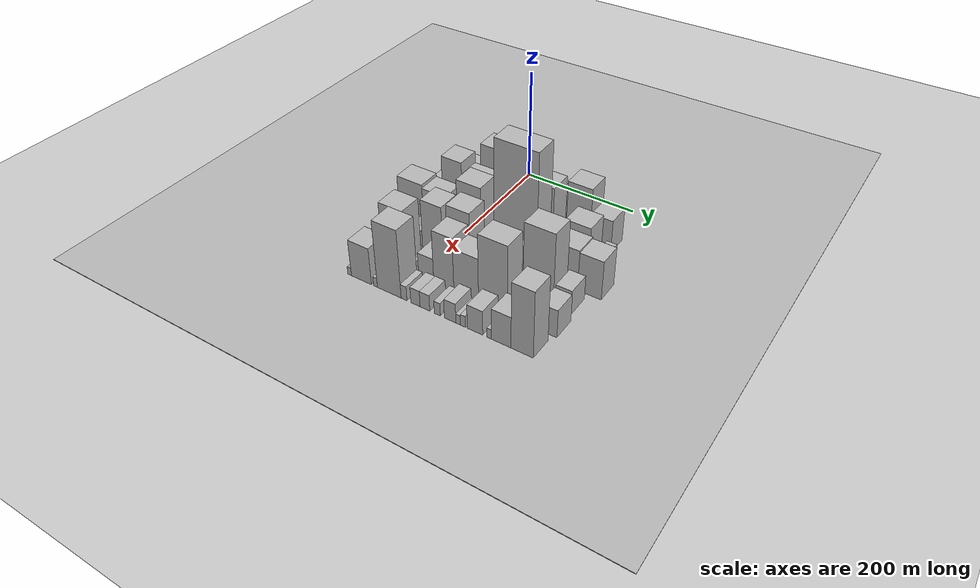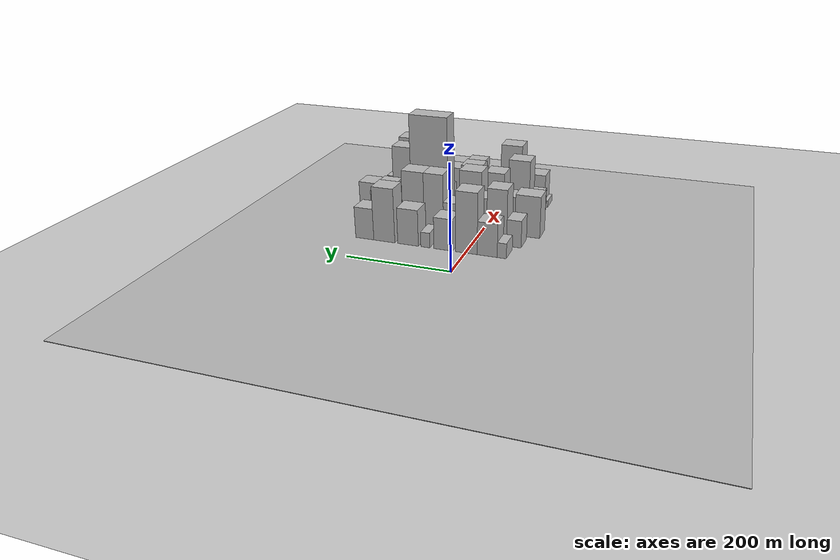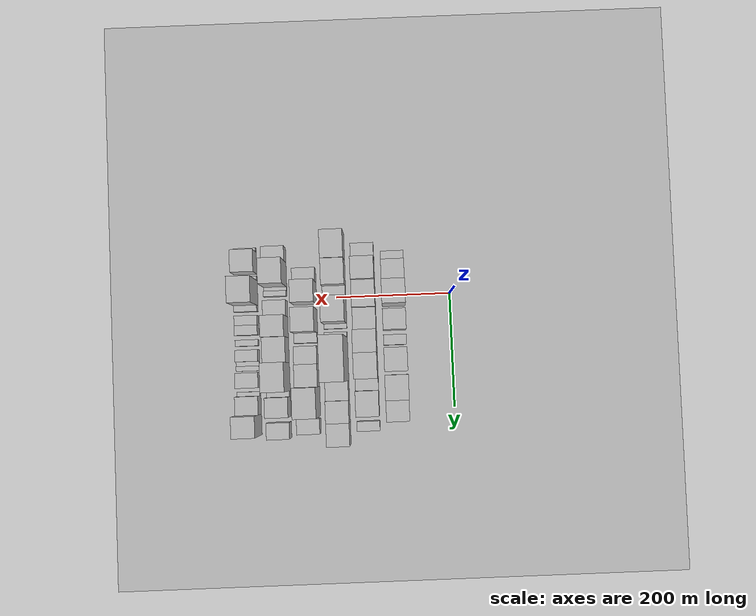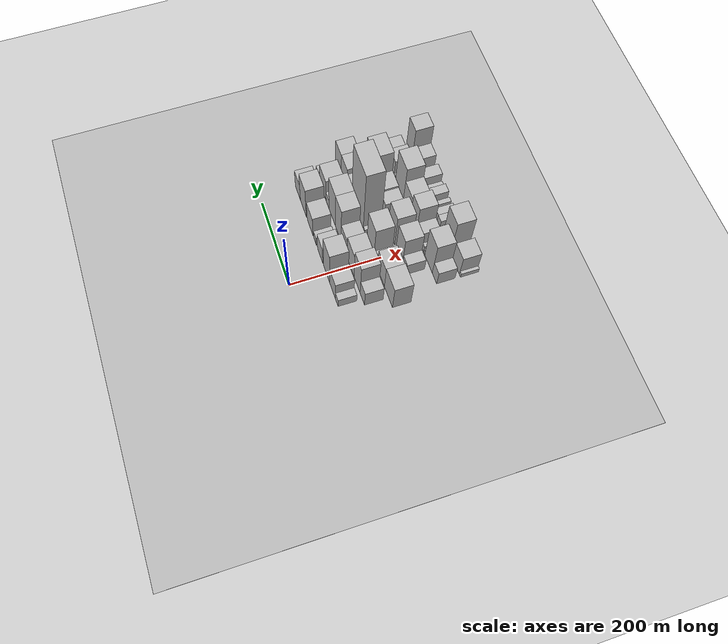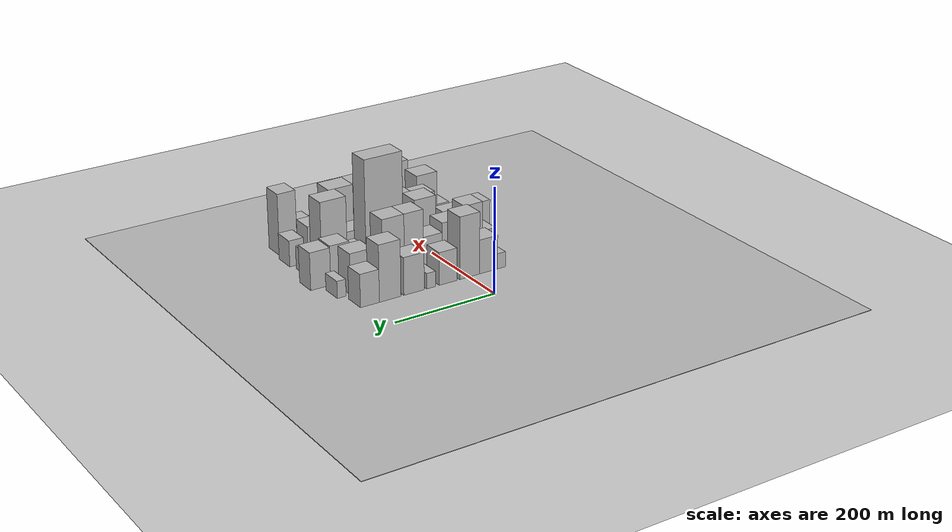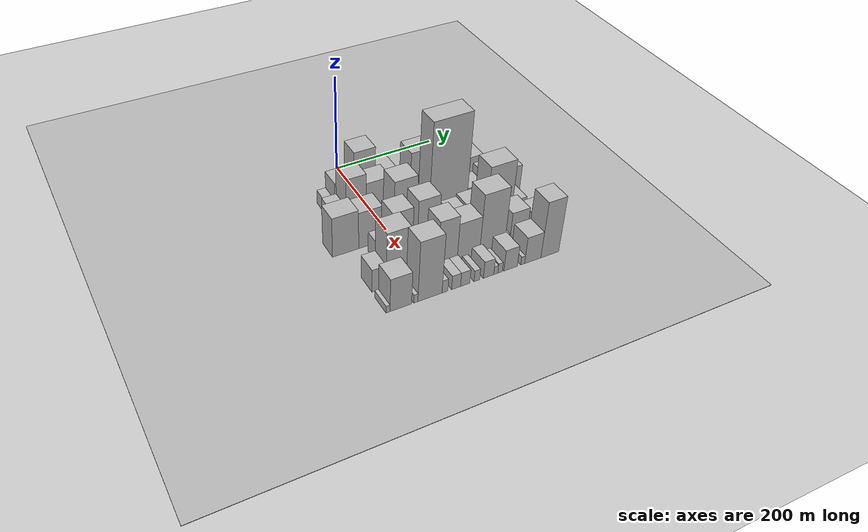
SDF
<sdf version="1.6">
 <world name="default">
  <include><name>ground_plane_1</name><uri>model://HANNAS_ground_plane</uri></include>
  <include>
   <name>ground_plane_2</name>
   <uri>model://HANNAS_ground_plane</uri>
   <pose>100 0 0  0 0 0</pose>
  </include>
  <model name="building_24">
   <static>1</static>
   <pose>100.0000 -68.7979 0 0.000000 0.000000 0.000000</pose>
   <link name="link">
    <pose>0 0 15.00 0 0 0</pose>
    <collision name="collision"><geometry><box><size>40.0000 17.1581 30.0000</size></box></geometry></collision>
    <visual name="visual">
     <cast_shadows>0</cast_shadows>
     <geometry><box><size>40.0000 17.1581 30.0000</size></box></geometry>
     <material>
      <script>
       <uri>model://HANNAS_wall/materials/scripts</uri>
       <uri>model://HANNAS_wall/materials/textures</uri>
       <name>vrc/HANNAS_wall</name>
      </script>
     </material>
    </visual>
   </link>
  </model>
  <model name="building_25">
   <static>1</static>
   <pose>100.0000 -41.3671 0 0.000000 0.000000 0.000000</pose>
   <link name="link">
    <pose>0 0 33.00 0 0 0</pose>
    <collision name="collision"><geometry><box><size>40.0000 37.7035 66.0000</size></box></geometry></collision>
    <visual name="visual">
     <cast_shadows>0</cast_shadows>
     <geometry><box><size>40.0000 37.7035 66.0000</size></box></geometry>
     <material>
      <script>
       <uri>model://HANNAS_wall/materials/scripts</uri>
       <uri>model://HANNAS_wall/materials/textures</uri>
       <name>vrc/HANNAS_wall</name>
      </script>
     </material>
    </visual>
   </link>
  </model>
  <model name="building_26">
   <static>1</static>
   <pose>100.0000 -1.7018 0 0.000000 0.000000 0.000000</pose>
   <link name="link">
    <pose>0 0 60.00 0 0 0</pose>
    <collision name="collision"><geometry><box><size>40.0000 41.6272 120.0000</size></box></geometry></collision>
    <visual name="visual">
     <cast_shadows>0</cast_shadows>
     <geometry><box><size>40.0000 41.6272 120.0000</size></box></geometry>
     <material>
      <script>
       <uri>model://HANNAS_wall/materials/scripts</uri>
       <uri>model://HANNAS_wall/materials/textures</uri>
       <name>vrc/HANNAS_wall</name>
      </script>
     </material>
    </visual>
   </link>
  </model>
  <model name="building_27">
   <static>1</static>
   <pose>100.0000 43.3163 0 0.000000 0.000000 0.000000</pose>
   <link name="link">
    <pose>0 0 31.50 0 0 0</pose>
    <collision name="collision"><geometry><box><size>40.0000 36.4091 63.0000</size></box></geometry></collision>
    <visual name="visual">
     <cast_shadows>0</cast_shadows>
     <geometry><box><size>40.0000 36.4091 63.0000</size></box></geometry>
     <material>
      <script>
       <uri>model://HANNAS_wall/materials/scripts</uri>
       <uri>model://HANNAS_wall/materials/textures</uri>
       <name>vrc/HANNAS_wall</name>
      </script>
     </material>
    </visual>
   </link>
  </model>
  <model name="building_28">
   <static>1</static>
   <pose>100.0000 78.5079 0 0.000000 0.000000 0.000000</pose>
   <link name="link">
    <pose>0 0 15.00 0 0 0</pose>
    <collision name="collision"><geometry><box><size>40.0000 17.9742 30.0000</size></box></geometry></collision>
    <visual name="visual">
     <cast_shadows>0</cast_shadows>
     <geometry><box><size>40.0000 17.9742 30.0000</size></box></geometry>
     <material>
      <script>
       <uri>model://HANNAS_wall/materials/scripts</uri>
       <uri>model://HANNAS_wall/materials/textures</uri>
       <name>vrc/HANNAS_wall</name>
      </script>
     </material>
    </visual>
   </link>
  </model>
  <model name="building_29">
   <static>1</static>
   <pose>100.0000 113.1503 0 0.000000 0.000000 0.000000</pose>
   <link name="link">
    <pose>0 0 36.00 0 0 0</pose>
    <collision name="collision"><geometry><box><size>40.0000 41.3105 72.0000</size></box></geometry></collision>
    <visual name="visual">
     <cast_shadows>0</cast_shadows>
     <geometry><box><size>40.0000 41.3105 72.0000</size></box></geometry>
     <material>
      <script>
       <uri>model://HANNAS_wall/materials/scripts</uri>
       <uri>model://HANNAS_wall/materials/textures</uri>
       <name>vrc/HANNAS_wall</name>
      </script>
     </material>
    </visual>
   </link>
  </model>
  <model name="building_30">
   <static>1</static>
   <pose>100.0000 161.3058 0 0.000000 0.000000 0.000000</pose>
   <link name="link">
    <pose>0 0 54.00 0 0 0</pose>
    <collision name="collision"><geometry><box><size>40.0000 43.0006 108.0000</size></box></geometry></collision>
    <visual name="visual">
     <cast_shadows>0</cast_shadows>
     <geometry><box><size>40.0000 43.0006 108.0000</size></box></geometry>
     <material>
      <script>
       <uri>model://HANNAS_wall/materials/scripts</uri>
       <uri>model://HANNAS_wall/materials/textures</uri>
       <name>vrc/HANNAS_wall</name>
      </script>
     </material>
    </visual>
   </link>
  </model>
  <model name="building_31">
   <static>1</static>
   <pose>100.0000 201.5353 0 0.000000 0.000000 0.000000</pose>
   <link name="link">
    <pose>0 0 31.50 0 0 0</pose>
    <collision name="collision"><geometry><box><size>40.0000 37.4584 63.0000</size></box></geometry></collision>
    <visual name="visual">
     <cast_shadows>0</cast_shadows>
     <geometry><box><size>40.0000 37.4584 63.0000</size></box></geometry>
     <material>
      <script>
       <uri>model://HANNAS_wall/materials/scripts</uri>
       <uri>model://HANNAS_wall/materials/textures</uri>
       <name>vrc/HANNAS_wall</name>
      </script>
     </material>
    </visual>
   </link>
  </model>
  <model name="building_72">
   <static>1</static>
   <pose>152.0000 -77.0069 0 0.000000 0.000000 0.000000</pose>
   <link name="link">
    <pose>0 0 27.00 0 0 0</pose>
    <collision name="collision"><geometry><box><size>40.0000 27.7486 54.0000</size></box></geometry></collision>
    <visual name="visual">
     <cast_shadows>0</cast_shadows>
     <geometry><box><size>40.0000 27.7486 54.0000</size></box></geometry>
     <material>
      <script>
       <uri>model://HANNAS_wall/materials/scripts</uri>
       <uri>model://HANNAS_wall/materials/textures</uri>
       <name>vrc/HANNAS_wall</name>
      </script>
     </material>
    </visual>
   </link>
  </model>
  <model name="building_73">
   <static>1</static>
   <pose>152.0000 -43.8006 0 0.000000 0.000000 0.000000</pose>
   <link name="link">
    <pose>0 0 55.50 0 0 0</pose>
    <collision name="collision"><geometry><box><size>40.0000 38.6639 111.0000</size></box></geometry></collision>
    <visual name="visual">
     <cast_shadows>0</cast_shadows>
     <geometry><box><size>40.0000 38.6639 111.0000</size></box></geometry>
     <material>
      <script>
       <uri>model://HANNAS_wall/materials/scripts</uri>
       <uri>model://HANNAS_wall/materials/textures</uri>
       <name>vrc/HANNAS_wall</name>
      </script>
     </material>
    </visual>
   </link>
  </model>
  <model name="building_74">
   <static>1</static>
   <pose>152.0000 -1.1710 0 0.000000 0.000000 0.000000</pose>
   <link name="link">
    <pose>0 0 45.00 0 0 0</pose>
    <collision name="collision"><geometry><box><size>40.0000 46.5953 90.0000</size></box></geometry></collision>
    <visual name="visual">
     <cast_shadows>0</cast_shadows>
     <geometry><box><size>40.0000 46.5953 90.0000</size></box></geometry>
     <material>
      <script>
       <uri>model://HANNAS_wall/materials/scripts</uri>
       <uri>model://HANNAS_wall/materials/textures</uri>
       <name>vrc/HANNAS_wall</name>
      </script>
     </material>
    </visual>
   </link>
  </model>
  <model name="building_75">
   <static>1</static>
   <pose>152.0000 41.7712 0 0.000000 0.000000 0.000000</pose>
   <link name="link">
    <pose>0 0 36.00 0 0 0</pose>
    <collision name="collision"><geometry><box><size>40.0000 39.2890 72.0000</size></box></geometry></collision>
    <visual name="visual">
     <cast_shadows>0</cast_shadows>
     <geometry><box><size>40.0000 39.2890 72.0000</size></box></geometry>
     <material>
      <script>
       <uri>model://HANNAS_wall/materials/scripts</uri>
       <uri>model://HANNAS_wall/materials/textures</uri>
       <name>vrc/HANNAS_wall</name>
      </script>
     </material>
    </visual>
   </link>
  </model>
  <model name="building_76">
   <static>1</static>
   <pose>152.0000 80.8757 0 0.000000 0.000000 0.000000</pose>
   <link name="link">
    <pose>0 0 63.00 0 0 0</pose>
    <collision name="collision"><geometry><box><size>40.0000 38.9200 126.0000</size></box></geometry></collision>
    <visual name="visual">
     <cast_shadows>0</cast_shadows>
     <geometry><box><size>40.0000 38.9200 126.0000</size></box></geometry>
     <material>
      <script>
       <uri>model://HANNAS_wall/materials/scripts</uri>
       <uri>model://HANNAS_wall/materials/textures</uri>
       <name>vrc/HANNAS_wall</name>
      </script>
     </material>
    </visual>
   </link>
  </model>
  <model name="building_77">
   <static>1</static>
   <pose>152.0000 122.4114 0 0.000000 0.000000 0.000000</pose>
   <link name="link">
    <pose>0 0 63.00 0 0 0</pose>
    <collision name="collision"><geometry><box><size>40.0000 44.1514 126.0000</size></box></geometry></collision>
    <visual name="visual">
     <cast_shadows>0</cast_shadows>
     <geometry><box><size>40.0000 44.1514 126.0000</size></box></geometry>
     <material>
      <script>
       <uri>model://HANNAS_wall/materials/scripts</uri>
       <uri>model://HANNAS_wall/materials/textures</uri>
       <name>vrc/HANNAS_wall</name>
      </script>
     </material>
    </visual>
   </link>
  </model>
  <model name="building_78">
   <static>1</static>
   <pose>152.0000 154.9196 0 0.000000 0.000000 0.000000</pose>
   <link name="link">
    <pose>0 0 18.00 0 0 0</pose>
    <collision name="collision"><geometry><box><size>40.0000 20.8650 36.0000</size></box></geometry></collision>
    <visual name="visual">
     <cast_shadows>0</cast_shadows>
     <geometry><box><size>40.0000 20.8650 36.0000</size></box></geometry>
     <material>
      <script>
       <uri>model://HANNAS_wall/materials/scripts</uri>
       <uri>model://HANNAS_wall/materials/textures</uri>
       <name>vrc/HANNAS_wall</name>
      </script>
     </material>
    </visual>
   </link>
  </model>
  <model name="building_79">
   <static>1</static>
   <pose>152.0000 187.4559 0 0.000000 0.000000 0.000000</pose>
   <link name="link">
    <pose>0 0 39.00 0 0 0</pose>
    <collision name="collision"><geometry><box><size>40.0000 44.2077 78.0000</size></box></geometry></collision>
    <visual name="visual">
     <cast_shadows>0</cast_shadows>
     <geometry><box><size>40.0000 44.2077 78.0000</size></box></geometry>
     <material>
      <script>
       <uri>model://HANNAS_wall/materials/scripts</uri>
       <uri>model://HANNAS_wall/materials/textures</uri>
       <name>vrc/HANNAS_wall</name>
      </script>
     </material>
    </visual>
   </link>
  </model>
  <model name="building_80">
   <static>1</static>
   <pose>152.0000 227.1322 0 0.000000 0.000000 0.000000</pose>
   <link name="link">
    <pose>0 0 16.50 0 0 0</pose>
    <collision name="collision"><geometry><box><size>40.0000 17.1450 33.0000</size></box></geometry></collision>
    <visual name="visual">
     <cast_shadows>0</cast_shadows>
     <geometry><box><size>40.0000 17.1450 33.0000</size></box></geometry>
     <material>
      <script>
       <uri>model://HANNAS_wall/materials/scripts</uri>
       <uri>model://HANNAS_wall/materials/textures</uri>
       <name>vrc/HANNAS_wall</name>
      </script>
     </material>
    </visual>
   </link>
  </model>
  <model name="building_120">
   <static>1</static>
   <pose>204.0000 -89.1551 0 0.000000 0.000000 0.000000</pose>
   <link name="link">
    <pose>0 0 42.00 0 0 0</pose>
    <collision name="collision"><geometry><box><size>40.0000 48.9381 84.0000</size></box></geometry></collision>
    <visual name="visual">
     <cast_shadows>0</cast_shadows>
     <geometry><box><size>40.0000 48.9381 84.0000</size></box></geometry>
     <material>
      <script>
       <uri>model://HANNAS_wall/materials/scripts</uri>
       <uri>model://HANNAS_wall/materials/textures</uri>
       <name>vrc/HANNAS_wall</name>
      </script>
     </material>
    </visual>
   </link>
  </model>
  <model name="building_121">
   <static>1</static>
   <pose>204.0000 -41.9742 0 0.000000 0.000000 0.000000</pose>
   <link name="link">
    <pose>0 0 39.00 0 0 0</pose>
    <collision name="collision"><geometry><box><size>40.0000 45.4238 78.0000</size></box></geometry></collision>
    <visual name="visual">
     <cast_shadows>0</cast_shadows>
     <geometry><box><size>40.0000 45.4238 78.0000</size></box></geometry>
     <material>
      <script>
       <uri>model://HANNAS_wall/materials/scripts</uri>
       <uri>model://HANNAS_wall/materials/textures</uri>
       <name>vrc/HANNAS_wall</name>
      </script>
     </material>
    </visual>
   </link>
  </model>
  <model name="building_122">
   <static>1</static>
   <pose>204.0000 -8.5684 0 0.000000 0.000000 0.000000</pose>
   <link name="link">
    <pose>0 0 18.00 0 0 0</pose>
    <collision name="collision"><geometry><box><size>40.0000 21.3878 36.0000</size></box></geometry></collision>
    <visual name="visual">
     <cast_shadows>0</cast_shadows>
     <geometry><box><size>40.0000 21.3878 36.0000</size></box></geometry>
     <material>
      <script>
       <uri>model://HANNAS_wall/materials/scripts</uri>
       <uri>model://HANNAS_wall/materials/textures</uri>
       <name>vrc/HANNAS_wall</name>
      </script>
     </material>
    </visual>
   </link>
  </model>
  <model name="building_123">
   <static>1</static>
   <pose>204.0000 24.3428 0 0.000000 0.000000 0.000000</pose>
   <link name="link">
    <pose>0 0 60.00 0 0 0</pose>
    <collision name="collision"><geometry><box><size>40.0000 44.4346 120.0000</size></box></geometry></collision>
    <visual name="visual">
     <cast_shadows>0</cast_shadows>
     <geometry><box><size>40.0000 44.4346 120.0000</size></box></geometry>
     <material>
      <script>
       <uri>model://HANNAS_wall/materials/scripts</uri>
       <uri>model://HANNAS_wall/materials/textures</uri>
       <name>vrc/HANNAS_wall</name>
      </script>
     </material>
    </visual>
   </link>
  </model>
  <model name="building_124">
   <static>1</static>
   <pose>204.0000 50.8503 0 0.000000 0.000000 0.000000</pose>
   <link name="link">
    <pose>0 0 9.00 0 0 0</pose>
    <collision name="collision"><geometry><box><size>40.0000 8.5805 18.0000</size></box></geometry></collision>
    <visual name="visual">
     <cast_shadows>0</cast_shadows>
     <geometry><box><size>40.0000 8.5805 18.0000</size></box></geometry>
     <material>
      <script>
       <uri>model://HANNAS_wall/materials/scripts</uri>
       <uri>model://HANNAS_wall/materials/textures</uri>
       <name>vrc/HANNAS_wall</name>
      </script>
     </material>
    </visual>
   </link>
  </model>
  <model name="building_125">
   <static>1</static>
   <pose>204.0000 66.0631 0 0.000000 0.000000 0.000000</pose>
   <link name="link">
    <pose>0 0 10.50 0 0 0</pose>
    <collision name="collision"><geometry><box><size>40.0000 9.8449 21.0000</size></box></geometry></collision>
    <visual name="visual">
     <cast_shadows>0</cast_shadows>
     <geometry><box><size>40.0000 9.8449 21.0000</size></box></geometry>
     <material>
      <script>
       <uri>model://HANNAS_wall/materials/scripts</uri>
       <uri>model://HANNAS_wall/materials/textures</uri>
       <name>vrc/HANNAS_wall</name>
      </script>
     </material>
    </visual>
   </link>
  </model>
  <model name="building_126">
   <static>1</static>
   <pose>204.0000 109.0249 0 0.000000 0.000000 0.000000</pose>
   <link name="link">
    <pose>0 0 109.50 0 0 0</pose>
    <collision name="collision"><geometry><box><size>40.0000 76.0788 219.0000</size></box></geometry></collision>
    <visual name="visual">
     <cast_shadows>0</cast_shadows>
     <geometry><box><size>40.0000 76.0788 219.0000</size></box></geometry>
     <material>
      <script>
       <uri>model://HANNAS_wall/materials/scripts</uri>
       <uri>model://HANNAS_wall/materials/textures</uri>
       <name>vrc/HANNAS_wall</name>
      </script>
     </material>
    </visual>
   </link>
  </model>
  <model name="building_127">
   <static>1</static>
   <pose>204.0000 163.8718 0 0.000000 0.000000 0.000000</pose>
   <link name="link">
    <pose>0 0 28.50 0 0 0</pose>
    <collision name="collision"><geometry><box><size>40.0000 33.6149 57.0000</size></box></geometry></collision>
    <visual name="visual">
     <cast_shadows>0</cast_shadows>
     <geometry><box><size>40.0000 33.6149 57.0000</size></box></geometry>
     <material>
      <script>
       <uri>model://HANNAS_wall/materials/scripts</uri>
       <uri>model://HANNAS_wall/materials/textures</uri>
       <name>vrc/HANNAS_wall</name>
      </script>
     </material>
    </visual>
   </link>
  </model>
  <model name="building_128">
   <static>1</static>
   <pose>204.0000 199.8957 0 0.000000 0.000000 0.000000</pose>
   <link name="link">
    <pose>0 0 37.50 0 0 0</pose>
    <collision name="collision"><geometry><box><size>40.0000 38.4328 75.0000</size></box></geometry></collision>
    <visual name="visual">
     <cast_shadows>0</cast_shadows>
     <geometry><box><size>40.0000 38.4328 75.0000</size></box></geometry>
     <material>
      <script>
       <uri>model://HANNAS_wall/materials/scripts</uri>
       <uri>model://HANNAS_wall/materials/textures</uri>
       <name>vrc/HANNAS_wall</name>
      </script>
     </material>
    </visual>
   </link>
  </model>
  <model name="building_129">
   <static>1</static>
   <pose>204.0000 238.9519 0 0.000000 0.000000 0.000000</pose>
   <link name="link">
    <pose>0 0 36.00 0 0 0</pose>
    <collision name="collision"><geometry><box><size>40.0000 39.6796 72.0000</size></box></geometry></collision>
    <visual name="visual">
     <cast_shadows>0</cast_shadows>
     <geometry><box><size>40.0000 39.6796 72.0000</size></box></geometry>
     <material>
      <script>
       <uri>model://HANNAS_wall/materials/scripts</uri>
       <uri>model://HANNAS_wall/materials/textures</uri>
       <name>vrc/HANNAS_wall</name>
      </script>
     </material>
    </visual>
   </link>
  </model>
  <model name="building_171">
   <static>1</static>
   <pose>256.0000 -40.4281 0 0.000000 0.000000 0.000000</pose>
   <link name="link">
    <pose>0 0 21.00 0 0 0</pose>
    <collision name="collision"><geometry><box><size>40.0000 24.3926 42.0000</size></box></geometry></collision>
    <visual name="visual">
     <cast_shadows>0</cast_shadows>
     <geometry><box><size>40.0000 24.3926 42.0000</size></box></geometry>
     <material>
      <script>
       <uri>model://HANNAS_wall/materials/scripts</uri>
       <uri>model://HANNAS_wall/materials/textures</uri>
       <name>vrc/HANNAS_wall</name>
      </script>
     </material>
    </visual>
   </link>
  </model>
  <model name="building_172">
   <static>1</static>
   <pose>256.0000 -8.9099 0 0.000000 0.000000 0.000000</pose>
   <link name="link">
    <pose>0 0 51.00 0 0 0</pose>
    <collision name="collision"><geometry><box><size>40.0000 38.6437 102.0000</size></box></geometry></collision>
    <visual name="visual">
     <cast_shadows>0</cast_shadows>
     <geometry><box><size>40.0000 38.6437 102.0000</size></box></geometry>
     <material>
      <script>
       <uri>model://HANNAS_wall/materials/scripts</uri>
       <uri>model://HANNAS_wall/materials/textures</uri>
       <name>vrc/HANNAS_wall</name>
      </script>
     </material>
    </visual>
   </link>
  </model>
  <model name="building_173">
   <static>1</static>
   <pose>256.0000 40.2641 0 0.000000 0.000000 0.000000</pose>
   <link name="link">
    <pose>0 0 55.50 0 0 0</pose>
    <collision name="collision"><geometry><box><size>40.0000 41.7044 111.0000</size></box></geometry></collision>
    <visual name="visual">
     <cast_shadows>0</cast_shadows>
     <geometry><box><size>40.0000 41.7044 111.0000</size></box></geometry>
     <material>
      <script>
       <uri>model://HANNAS_wall/materials/scripts</uri>
       <uri>model://HANNAS_wall/materials/textures</uri>
       <name>vrc/HANNAS_wall</name>
      </script>
     </material>
    </visual>
   </link>
  </model>
  <model name="building_174">
   <static>1</static>
   <pose>256.0000 69.8513 0 0.000000 0.000000 0.000000</pose>
   <link name="link">
    <pose>0 0 16.50 0 0 0</pose>
    <collision name="collision"><geometry><box><size>40.0000 17.4700 33.0000</size></box></geometry></collision>
    <visual name="visual">
     <cast_shadows>0</cast_shadows>
     <geometry><box><size>40.0000 17.4700 33.0000</size></box></geometry>
     <material>
      <script>
       <uri>model://HANNAS_wall/materials/scripts</uri>
       <uri>model://HANNAS_wall/materials/textures</uri>
       <name>vrc/HANNAS_wall</name>
      </script>
     </material>
    </visual>
   </link>
  </model>
  <model name="building_175">
   <static>1</static>
   <pose>256.0000 100.2231 0 0.000000 0.000000 0.000000</pose>
   <link name="link">
    <pose>0 0 30.00 0 0 0</pose>
    <collision name="collision"><geometry><box><size>40.0000 31.2736 60.0000</size></box></geometry></collision>
    <visual name="visual">
     <cast_shadows>0</cast_shadows>
     <geometry><box><size>40.0000 31.2736 60.0000</size></box></geometry>
     <material>
      <script>
       <uri>model://HANNAS_wall/materials/scripts</uri>
       <uri>model://HANNAS_wall/materials/textures</uri>
       <name>vrc/HANNAS_wall</name>
      </script>
     </material>
    </visual>
   </link>
  </model>
  <model name="building_176">
   <static>1</static>
   <pose>256.0000 135.6435 0 0.000000 0.000000 0.000000</pose>
   <link name="link">
    <pose>0 0 33.00 0 0 0</pose>
    <collision name="collision"><geometry><box><size>40.0000 39.5671 66.0000</size></box></geometry></collision>
    <visual name="visual">
     <cast_shadows>0</cast_shadows>
     <geometry><box><size>40.0000 39.5671 66.0000</size></box></geometry>
     <material>
      <script>
       <uri>model://HANNAS_wall/materials/scripts</uri>
       <uri>model://HANNAS_wall/materials/textures</uri>
       <name>vrc/HANNAS_wall</name>
      </script>
     </material>
    </visual>
   </link>
  </model>
  <model name="building_177">
   <static>1</static>
   <pose>256.0000 181.3372 0 0.000000 0.000000 0.000000</pose>
   <link name="link">
    <pose>0 0 67.50 0 0 0</pose>
    <collision name="collision"><geometry><box><size>40.0000 51.8203 135.0000</size></box></geometry></collision>
    <visual name="visual">
     <cast_shadows>0</cast_shadows>
     <geometry><box><size>40.0000 51.8203 135.0000</size></box></geometry>
     <material>
      <script>
       <uri>model://HANNAS_wall/materials/scripts</uri>
       <uri>model://HANNAS_wall/materials/textures</uri>
       <name>vrc/HANNAS_wall</name>
      </script>
     </material>
    </visual>
   </link>
  </model>
  <model name="building_178">
   <static>1</static>
   <pose>256.0000 223.6647 0 0.000000 0.000000 0.000000</pose>
   <link name="link">
    <pose>0 0 22.50 0 0 0</pose>
    <collision name="collision"><geometry><box><size>40.0000 26.8348 45.0000</size></box></geometry></collision>
    <visual name="visual">
     <cast_shadows>0</cast_shadows>
     <geometry><box><size>40.0000 26.8348 45.0000</size></box></geometry>
     <material>
      <script>
       <uri>model://HANNAS_wall/materials/scripts</uri>
       <uri>model://HANNAS_wall/materials/textures</uri>
       <name>vrc/HANNAS_wall</name>
      </script>
     </material>
    </visual>
   </link>
  </model>
  <model name="building_220">
   <static>1</static>
   <pose>308.0000 -78.9247 0 0.000000 0.000000 0.000000</pose>
   <link name="link">
    <pose>0 0 24.00 0 0 0</pose>
    <collision name="collision"><geometry><box><size>40.0000 25.8873 48.0000</size></box></geometry></collision>
    <visual name="visual">
     <cast_shadows>0</cast_shadows>
     <geometry><box><size>40.0000 25.8873 48.0000</size></box></geometry>
     <material>
      <script>
       <uri>model://HANNAS_wall/materials/scripts</uri>
       <uri>model://HANNAS_wall/materials/textures</uri>
       <name>vrc/HANNAS_wall</name>
      </script>
     </material>
    </visual>
   </link>
  </model>
  <model name="building_221">
   <static>1</static>
   <pose>308.0000 -44.1420 0 0.000000 0.000000 0.000000</pose>
   <link name="link">
    <pose>0 0 57.00 0 0 0</pose>
    <collision name="collision"><geometry><box><size>40.0000 43.6779 114.0000</size></box></geometry></collision>
    <visual name="visual">
     <cast_shadows>0</cast_shadows>
     <geometry><box><size>40.0000 43.6779 114.0000</size></box></geometry>
     <material>
      <script>
       <uri>model://HANNAS_wall/materials/scripts</uri>
       <uri>model://HANNAS_wall/materials/textures</uri>
       <name>vrc/HANNAS_wall</name>
      </script>
     </material>
    </visual>
   </link>
  </model>
  <model name="building_222">
   <static>1</static>
   <pose>308.0000 -18.7737 0 0.000000 0.000000 0.000000</pose>
   <link name="link">
    <pose>0 0 7.50 0 0 0</pose>
    <collision name="collision"><geometry><box><size>40.0000 7.0588 15.0000</size></box></geometry></collision>
    <visual name="visual">
     <cast_shadows>0</cast_shadows>
     <geometry><box><size>40.0000 7.0588 15.0000</size></box></geometry>
     <material>
      <script>
       <uri>model://HANNAS_wall/materials/scripts</uri>
       <uri>model://HANNAS_wall/materials/textures</uri>
       <name>vrc/HANNAS_wall</name>
      </script>
     </material>
    </visual>
   </link>
  </model>
  <model name="building_223">
   <static>1</static>
   <pose>308.0000 -10.4358 0 0.000000 0.000000 0.000000</pose>
   <link name="link">
    <pose>0 0 12.00 0 0 0</pose>
    <collision name="collision"><geometry><box><size>40.0000 9.6169 24.0000</size></box></geometry></collision>
    <visual name="visual">
     <cast_shadows>0</cast_shadows>
     <geometry><box><size>40.0000 9.6169 24.0000</size></box></geometry>
     <material>
      <script>
       <uri>model://HANNAS_wall/materials/scripts</uri>
       <uri>model://HANNAS_wall/materials/textures</uri>
       <name>vrc/HANNAS_wall</name>
      </script>
     </material>
    </visual>
   </link>
  </model>
  <model name="building_224">
   <static>1</static>
   <pose>308.0000 16.4728 0 0.000000 0.000000 0.000000</pose>
   <link name="link">
    <pose>0 0 24.00 0 0 0</pose>
    <collision name="collision"><geometry><box><size>40.0000 28.2002 48.0000</size></box></geometry></collision>
    <visual name="visual">
     <cast_shadows>0</cast_shadows>
     <geometry><box><size>40.0000 28.2002 48.0000</size></box></geometry>
     <material>
      <script>
       <uri>model://HANNAS_wall/materials/scripts</uri>
       <uri>model://HANNAS_wall/materials/textures</uri>
       <name>vrc/HANNAS_wall</name>
      </script>
     </material>
    </visual>
   </link>
  </model>
  <model name="building_225">
   <static>1</static>
   <pose>308.0000 48.9398 0 0.000000 0.000000 0.000000</pose>
   <link name="link">
    <pose>0 0 51.00 0 0 0</pose>
    <collision name="collision"><geometry><box><size>40.0000 36.7338 102.0000</size></box></geometry></collision>
    <visual name="visual">
     <cast_shadows>0</cast_shadows>
     <geometry><box><size>40.0000 36.7338 102.0000</size></box></geometry>
     <material>
      <script>
       <uri>model://HANNAS_wall/materials/scripts</uri>
       <uri>model://HANNAS_wall/materials/textures</uri>
       <name>vrc/HANNAS_wall</name>
      </script>
     </material>
    </visual>
   </link>
  </model>
  <model name="building_226">
   <static>1</static>
   <pose>308.0000 89.2383 0 0.000000 0.000000 0.000000</pose>
   <link name="link">
    <pose>0 0 42.00 0 0 0</pose>
    <collision name="collision"><geometry><box><size>40.0000 43.8633 84.0000</size></box></geometry></collision>
    <visual name="visual">
     <cast_shadows>0</cast_shadows>
     <geometry><box><size>40.0000 43.8633 84.0000</size></box></geometry>
     <material>
      <script>
       <uri>model://HANNAS_wall/materials/scripts</uri>
       <uri>model://HANNAS_wall/materials/textures</uri>
       <name>vrc/HANNAS_wall</name>
      </script>
     </material>
    </visual>
   </link>
  </model>
  <model name="building_227">
   <static>1</static>
   <pose>308.0000 136.1266 0 0.000000 0.000000 0.000000</pose>
   <link name="link">
    <pose>0 0 64.50 0 0 0</pose>
    <collision name="collision"><geometry><box><size>40.0000 49.9134 129.0000</size></box></geometry></collision>
    <visual name="visual">
     <cast_shadows>0</cast_shadows>
     <geometry><box><size>40.0000 49.9134 129.0000</size></box></geometry>
     <material>
      <script>
       <uri>model://HANNAS_wall/materials/scripts</uri>
       <uri>model://HANNAS_wall/materials/textures</uri>
       <name>vrc/HANNAS_wall</name>
      </script>
     </material>
    </visual>
   </link>
  </model>
  <model name="building_228">
   <static>1</static>
   <pose>308.0000 166.0861 0 0.000000 0.000000 0.000000</pose>
   <link name="link">
    <pose>0 0 12.00 0 0 0</pose>
    <collision name="collision"><geometry><box><size>40.0000 10.0056 24.0000</size></box></geometry></collision>
    <visual name="visual">
     <cast_shadows>0</cast_shadows>
     <geometry><box><size>40.0000 10.0056 24.0000</size></box></geometry>
     <material>
      <script>
       <uri>model://HANNAS_wall/materials/scripts</uri>
       <uri>model://HANNAS_wall/materials/textures</uri>
       <name>vrc/HANNAS_wall</name>
      </script>
     </material>
    </visual>
   </link>
  </model>
  <model name="building_229">
   <static>1</static>
   <pose>308.0000 188.4541 0 0.000000 0.000000 0.000000</pose>
   <link name="link">
    <pose>0 0 34.50 0 0 0</pose>
    <collision name="collision"><geometry><box><size>40.0000 34.7304 69.0000</size></box></geometry></collision>
    <visual name="visual">
     <cast_shadows>0</cast_shadows>
     <geometry><box><size>40.0000 34.7304 69.0000</size></box></geometry>
     <material>
      <script>
       <uri>model://HANNAS_wall/materials/scripts</uri>
       <uri>model://HANNAS_wall/materials/textures</uri>
       <name>vrc/HANNAS_wall</name>
      </script>
     </material>
    </visual>
   </link>
  </model>
  <model name="building_230">
   <static>1</static>
   <pose>308.0000 229.1796 0 0.000000 0.000000 0.000000</pose>
   <link name="link">
    <pose>0 0 25.50 0 0 0</pose>
    <collision name="collision"><geometry><box><size>40.0000 28.7205 51.0000</size></box></geometry></collision>
    <visual name="visual">
     <cast_shadows>0</cast_shadows>
     <geometry><box><size>40.0000 28.7205 51.0000</size></box></geometry>
     <material>
      <script>
       <uri>model://HANNAS_wall/materials/scripts</uri>
       <uri>model://HANNAS_wall/materials/textures</uri>
       <name>vrc/HANNAS_wall</name>
      </script>
     </material>
    </visual>
   </link>
  </model>
  <model name="building_274">
   <static>1</static>
   <pose>360.0000 -89.5561 0 0.000000 0.000000 0.000000</pose>
   <link name="link">
    <pose>0 0 7.50 0 0 0</pose>
    <collision name="collision"><geometry><box><size>40.0000 6.9805 15.0000</size></box></geometry></collision>
    <visual name="visual">
     <cast_shadows>0</cast_shadows>
     <geometry><box><size>40.0000 6.9805 15.0000</size></box></geometry>
     <material>
      <script>
       <uri>model://HANNAS_wall/materials/scripts</uri>
       <uri>model://HANNAS_wall/materials/textures</uri>
       <name>vrc/HANNAS_wall</name>
      </script>
     </material>
    </visual>
   </link>
  </model>
  <model name="building_275">
   <static>1</static>
   <pose>360.0000 -66.6543 0 0.000000 0.000000 0.000000</pose>
   <link name="link">
    <pose>0 0 34.50 0 0 0</pose>
    <collision name="collision"><geometry><box><size>40.0000 38.8232 69.0000</size></box></geometry></collision>
    <visual name="visual">
     <cast_shadows>0</cast_shadows>
     <geometry><box><size>40.0000 38.8232 69.0000</size></box></geometry>
     <material>
      <script>
       <uri>model://HANNAS_wall/materials/scripts</uri>
       <uri>model://HANNAS_wall/materials/textures</uri>
       <name>vrc/HANNAS_wall</name>
      </script>
     </material>
    </visual>
   </link>
  </model>
  <model name="building_276">
   <static>1</static>
   <pose>360.0000 -39.5245 0 0.000000 0.000000 0.000000</pose>
   <link name="link">
    <pose>0 0 9.00 0 0 0</pose>
    <collision name="collision"><geometry><box><size>40.0000 7.4363 18.0000</size></box></geometry></collision>
    <visual name="visual">
     <cast_shadows>0</cast_shadows>
     <geometry><box><size>40.0000 7.4363 18.0000</size></box></geometry>
     <material>
      <script>
       <uri>model://HANNAS_wall/materials/scripts</uri>
       <uri>model://HANNAS_wall/materials/textures</uri>
       <name>vrc/HANNAS_wall</name>
      </script>
     </material>
    </visual>
   </link>
  </model>
  <model name="building_277">
   <static>1</static>
   <pose>360.0000 -13.5751 0 0.000000 0.000000 0.000000</pose>
   <link name="link">
    <pose>0 0 63.00 0 0 0</pose>
    <collision name="collision"><geometry><box><size>40.0000 44.4623 126.0000</size></box></geometry></collision>
    <visual name="visual">
     <cast_shadows>0</cast_shadows>
     <geometry><box><size>40.0000 44.4623 126.0000</size></box></geometry>
     <material>
      <script>
       <uri>model://HANNAS_wall/materials/scripts</uri>
       <uri>model://HANNAS_wall/materials/textures</uri>
       <name>vrc/HANNAS_wall</name>
      </script>
     </material>
    </visual>
   </link>
  </model>
  <model name="building_278">
   <static>1</static>
   <pose>360.0000 14.0743 0 0.000000 0.000000 0.000000</pose>
   <link name="link">
    <pose>0 0 13.50 0 0 0</pose>
    <collision name="collision"><geometry><box><size>40.0000 10.8365 27.0000</size></box></geometry></collision>
    <visual name="visual">
     <cast_shadows>0</cast_shadows>
     <geometry><box><size>40.0000 10.8365 27.0000</size></box></geometry>
     <material>
      <script>
       <uri>model://HANNAS_wall/materials/scripts</uri>
       <uri>model://HANNAS_wall/materials/textures</uri>
       <name>vrc/HANNAS_wall</name>
      </script>
     </material>
    </visual>
   </link>
  </model>
  <model name="building_279">
   <static>1</static>
   <pose>360.0000 34.9309 0 0.000000 0.000000 0.000000</pose>
   <link name="link">
    <pose>0 0 15.00 0 0 0</pose>
    <collision name="collision"><geometry><box><size>40.0000 16.8767 30.0000</size></box></geometry></collision>
    <visual name="visual">
     <cast_shadows>0</cast_shadows>
     <geometry><box><size>40.0000 16.8767 30.0000</size></box></geometry>
     <material>
      <script>
       <uri>model://HANNAS_wall/materials/scripts</uri>
       <uri>model://HANNAS_wall/materials/textures</uri>
       <name>vrc/HANNAS_wall</name>
      </script>
     </material>
    </visual>
   </link>
  </model>
  <model name="building_280">
   <static>1</static>
   <pose>360.0000 52.1270 0 0.000000 0.000000 0.000000</pose>
   <link name="link">
    <pose>0 0 15.00 0 0 0</pose>
    <collision name="collision"><geometry><box><size>40.0000 17.5156 30.0000</size></box></geometry></collision>
    <visual name="visual">
     <cast_shadows>0</cast_shadows>
     <geometry><box><size>40.0000 17.5156 30.0000</size></box></geometry>
     <material>
      <script>
       <uri>model://HANNAS_wall/materials/scripts</uri>
       <uri>model://HANNAS_wall/materials/textures</uri>
       <name>vrc/HANNAS_wall</name>
      </script>
     </material>
    </visual>
   </link>
  </model>
  <model name="building_281">
   <static>1</static>
   <pose>360.0000 74.3217 0 0.000000 0.000000 0.000000</pose>
   <link name="link">
    <pose>0 0 12.00 0 0 0</pose>
    <collision name="collision"><geometry><box><size>40.0000 10.8738 24.0000</size></box></geometry></collision>
    <visual name="visual">
     <cast_shadows>0</cast_shadows>
     <geometry><box><size>40.0000 10.8738 24.0000</size></box></geometry>
     <material>
      <script>
       <uri>model://HANNAS_wall/materials/scripts</uri>
       <uri>model://HANNAS_wall/materials/textures</uri>
       <name>vrc/HANNAS_wall</name>
      </script>
     </material>
    </visual>
   </link>
  </model>
  <model name="building_282">
   <static>1</static>
   <pose>360.0000 96.8452 0 0.000000 0.000000 0.000000</pose>
   <link name="link">
    <pose>0 0 18.00 0 0 0</pose>
    <collision name="collision"><geometry><box><size>40.0000 20.1731 36.0000</size></box></geometry></collision>
    <visual name="visual">
     <cast_shadows>0</cast_shadows>
     <geometry><box><size>40.0000 20.1731 36.0000</size></box></geometry>
     <material>
      <script>
       <uri>model://HANNAS_wall/materials/scripts</uri>
       <uri>model://HANNAS_wall/materials/textures</uri>
       <name>vrc/HANNAS_wall</name>
      </script>
     </material>
    </visual>
   </link>
  </model>
  <model name="building_283">
   <static>1</static>
   <pose>360.0000 110.9006 0 0.000000 0.000000 0.000000</pose>
   <link name="link">
    <pose>0 0 9.00 0 0 0</pose>
    <collision name="collision"><geometry><box><size>40.0000 7.9377 18.0000</size></box></geometry></collision>
    <visual name="visual">
     <cast_shadows>0</cast_shadows>
     <geometry><box><size>40.0000 7.9377 18.0000</size></box></geometry>
     <material>
      <script>
       <uri>model://HANNAS_wall/materials/scripts</uri>
       <uri>model://HANNAS_wall/materials/textures</uri>
       <name>vrc/HANNAS_wall</name>
      </script>
     </material>
    </visual>
   </link>
  </model>
  <model name="building_284">
   <static>1</static>
   <pose>360.0000 119.2291 0 0.000000 0.000000 0.000000</pose>
   <link name="link">
    <pose>0 0 10.50 0 0 0</pose>
    <collision name="collision"><geometry><box><size>40.0000 8.7194 21.0000</size></box></geometry></collision>
    <visual name="visual">
     <cast_shadows>0</cast_shadows>
     <geometry><box><size>40.0000 8.7194 21.0000</size></box></geometry>
     <material>
      <script>
       <uri>model://HANNAS_wall/materials/scripts</uri>
       <uri>model://HANNAS_wall/materials/textures</uri>
       <name>vrc/HANNAS_wall</name>
      </script>
     </material>
    </visual>
   </link>
  </model>
  <model name="building_285">
   <static>1</static>
   <pose>360.0000 139.8058 0 0.000000 0.000000 0.000000</pose>
   <link name="link">
    <pose>0 0 22.50 0 0 0</pose>
    <collision name="collision"><geometry><box><size>40.0000 26.4339 45.0000</size></box></geometry></collision>
    <visual name="visual">
     <cast_shadows>0</cast_shadows>
     <geometry><box><size>40.0000 26.4339 45.0000</size></box></geometry>
     <material>
      <script>
       <uri>model://HANNAS_wall/materials/scripts</uri>
       <uri>model://HANNAS_wall/materials/textures</uri>
       <name>vrc/HANNAS_wall</name>
      </script>
     </material>
    </visual>
   </link>
  </model>
  <model name="building_286">
   <static>1</static>
   <pose>360.0000 163.7573 0 0.000000 0.000000 0.000000</pose>
   <link name="link">
    <pose>0 0 9.00 0 0 0</pose>
    <collision name="collision"><geometry><box><size>40.0000 7.4691 18.0000</size></box></geometry></collision>
    <visual name="visual">
     <cast_shadows>0</cast_shadows>
     <geometry><box><size>40.0000 7.4691 18.0000</size></box></geometry>
     <material>
      <script>
       <uri>model://HANNAS_wall/materials/scripts</uri>
       <uri>model://HANNAS_wall/materials/textures</uri>
       <name>vrc/HANNAS_wall</name>
      </script>
     </material>
    </visual>
   </link>
  </model>
  <model name="building_287">
   <static>1</static>
   <pose>360.0000 183.6656 0 0.000000 0.000000 0.000000</pose>
   <link name="link">
    <pose>0 0 28.50 0 0 0</pose>
    <collision name="collision"><geometry><box><size>40.0000 32.3475 57.0000</size></box></geometry></collision>
    <visual name="visual">
     <cast_shadows>0</cast_shadows>
     <geometry><box><size>40.0000 32.3475 57.0000</size></box></geometry>
     <material>
      <script>
       <uri>model://HANNAS_wall/materials/scripts</uri>
       <uri>model://HANNAS_wall/materials/textures</uri>
       <name>vrc/HANNAS_wall</name>
      </script>
     </material>
    </visual>
   </link>
  </model>
  <model name="building_288">
   <static>1</static>
   <pose>360.0000 218.0008 0 0.000000 0.000000 0.000000</pose>
   <link name="link">
    <pose>0 0 60.00 0 0 0</pose>
    <collision name="collision"><geometry><box><size>40.0000 36.3229 120.0000</size></box></geometry></collision>
    <visual name="visual">
     <cast_shadows>0</cast_shadows>
     <geometry><box><size>40.0000 36.3229 120.0000</size></box></geometry>
     <material>
      <script>
       <uri>model://HANNAS_wall/materials/scripts</uri>
       <uri>model://HANNAS_wall/materials/textures</uri>
       <name>vrc/HANNAS_wall</name>
      </script>
     </material>
    </visual>
   </link>
  </model>
 </world>
</sdf>
